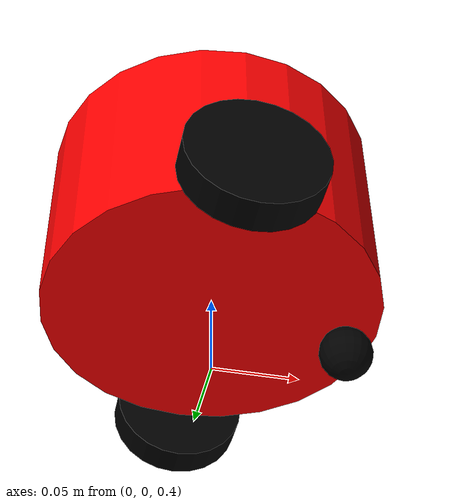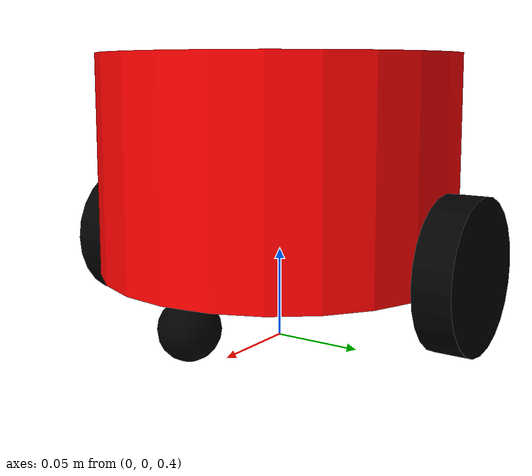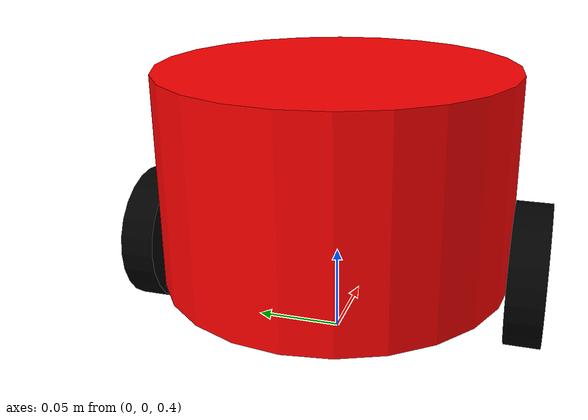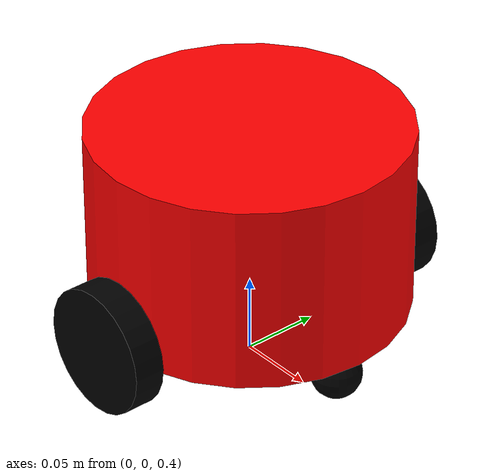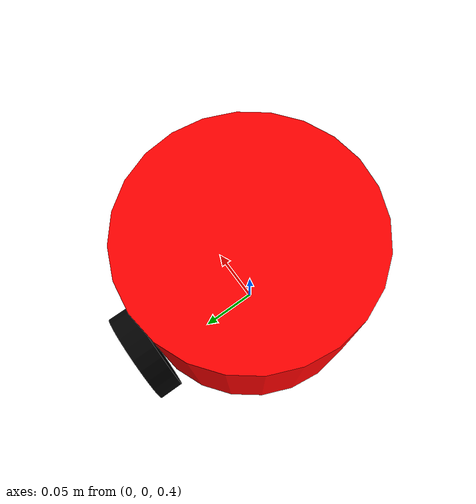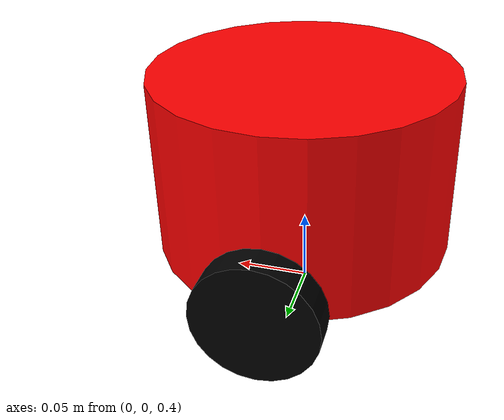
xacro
<?xml version="1.0"?>
<robot xmlns:xacro="http://www.ros.org/wiki/xacro" name="bot">

    <xacro:property name="base_radius" value="0.10" />
    <xacro:property name="base_length" value="0.12" />
    <xacro:property name="wheel_radius" value="0.04" />
    <xacro:property name="wheel_length" value="0.02" />
    <xacro:property name="wheel_ygap" value="0.01" />

    <xacro:macro name="inertial_cylinder" params="mass radius length">
        <inertial>
            <mass value="${mass}"/>
            <inertia ixx="${(1/12) * mass * (3*radius*radius + length*length)}" ixy="0" ixz="0"
                     iyy="${(1/12) * mass * (3*radius*radius + length*length)}" iyz="0"
                     izz="${(1/2) * mass * (radius*radius)}"/>
        </inertial>
    </xacro:macro>

    <material name="red"><color rgba="1 0 0 1"/></material>
    <material name="black"><color rgba="0 0 0 1"/></material>

    <link name="base_footprint"/>
    <joint name="base_joint" type="fixed">
        <parent link="base_footprint"/>
        <child link="base_link"/>
        <origin xyz="0 0 0.5" rpy="0 0 0"/>
    </joint>

    <link name="base_link">
        <visual>
            <geometry><cylinder radius="${base_radius}" length="${base_length}"/></geometry>
            <material name="red"/>
        </visual>
        <collision>
            <geometry><cylinder radius="${base_radius}" length="${base_length}"/></geometry>
        </collision>
        <xacro:inertial_cylinder mass="1.0" radius="${base_radius}" length="${base_length}"/>
    </link>

    <!-- Left Wheel -->
    <link name="left_wheel_link">
        <visual>
            <origin rpy="${pi/2} 0 0" xyz="0 0 0"/>
            <geometry><cylinder radius="${wheel_radius}" length="${wheel_length}"/></geometry>
            <material name="black"/>
        </visual>
        <collision>
            <origin rpy="${pi/2} 0 0" xyz="0 0 0"/>
            <geometry><cylinder radius="${wheel_radius}" length="${wheel_length}"/></geometry>
        </collision>
        <xacro:inertial_cylinder mass="0.1" radius="${wheel_radius}" length="${wheel_length}"/>
    </link>
    <joint name="left_wheel_joint" type="continuous">
        <parent link="base_link"/>
        <child link="left_wheel_link"/>
        <origin xyz="0 ${base_radius + wheel_ygap} -0.05" rpy="0 0 0"/>
        <axis xyz="0 1 0"/>
    </joint>

    <!-- Right Wheel -->
    <link name="right_wheel_link">
        <visual>
            <origin rpy="${pi/2} 0 0" xyz="0 0 0"/>
            <geometry><cylinder radius="${wheel_radius}" length="${wheel_length}"/></geometry>
            <material name="black"/>
        </visual>
        <collision>
            <origin rpy="${pi/2} 0 0" xyz="0 0 0"/>
            <geometry><cylinder radius="${wheel_radius}" length="${wheel_length}"/></geometry>
        </collision>
        <xacro:inertial_cylinder mass="0.1" radius="${wheel_radius}" length="${wheel_length}"/>
    </link>
    <joint name="right_wheel_joint" type="continuous">
        <parent link="base_link"/>
        <child link="right_wheel_link"/>
        <origin xyz="0 -${base_radius + wheel_ygap} -0.05" rpy="0 0 0"/>
        <axis xyz="0 1 0"/>
    </joint>

    <!-- 支撑轮 (万向轮) -->
    <link name="caster_link">
        <visual>
            <geometry><sphere radius="0.016"/></geometry>
            <material name="black"/>
        </visual>
        <collision>
            <geometry><sphere radius="0.016"/></geometry>
        </collision>
        <xacro:inertial_cylinder mass="0.1" radius="0.016" length="0.01"/> <!-- 简单借用宏或写个球体宏 -->
    </link>

    <joint name="caster_joint" type="fixed">
        <parent link="base_link"/>
        <child link="caster_link"/>
        <!-- 位置放在底座前方，高度要算准，刚好触地 -->
        <origin xyz="0.08 0 -0.076" rpy="0 0 0"/>
    </joint>

    <gazebo>
        <plugin filename="gz-sim-diff-drive-system" name="gz::sim::systems::DiffDrive">
            <left_joint>left_joint</left_joint>
            <right_joint>right_joint</right_joint>
            <wheel_separation>${(base_radius + wheel_ygap) * 2}</wheel_separation>
            <wheel_radius>${wheel_radius}</wheel_radius>
            <topic>cmd_vel</topic>
            <odom_topic>odom</odom_topic>
            <frame_id>odom</frame_id>
            <child_frame_id>base_link</child_frame_id>
        </plugin>
        <plugin filename="gz-sim-joint-state-publisher-system" name="gz::sim::systems::JointStatePublisher">
            <topic>joint_states</topic>
        </plugin>
    </gazebo>
</robot>
